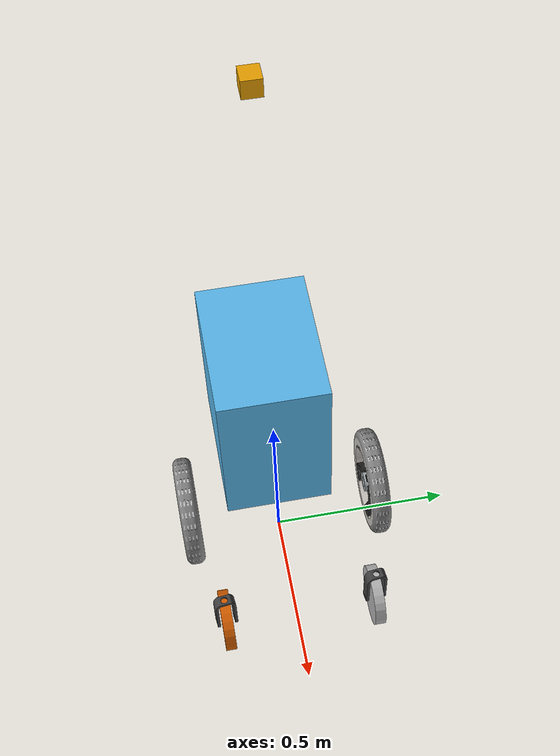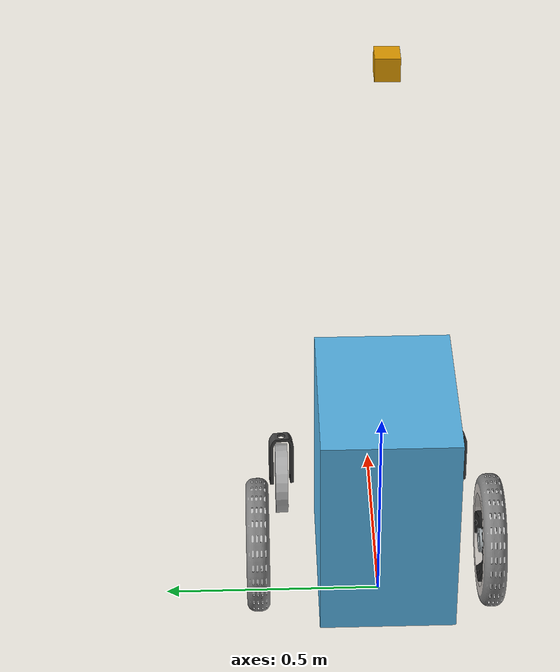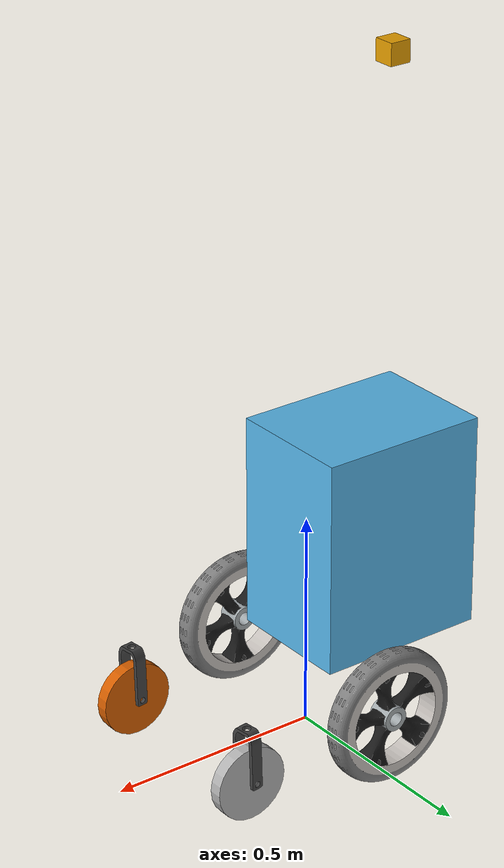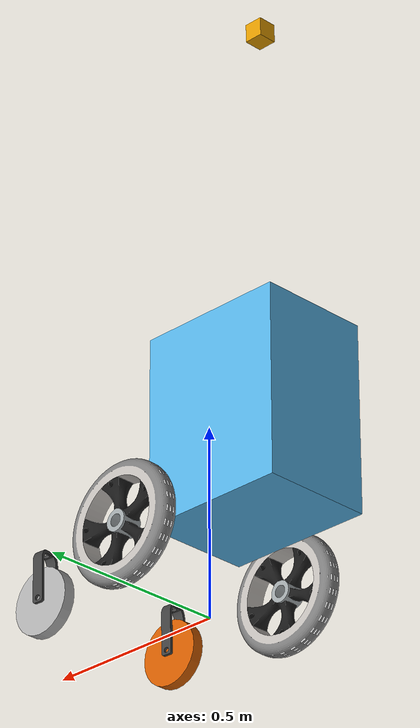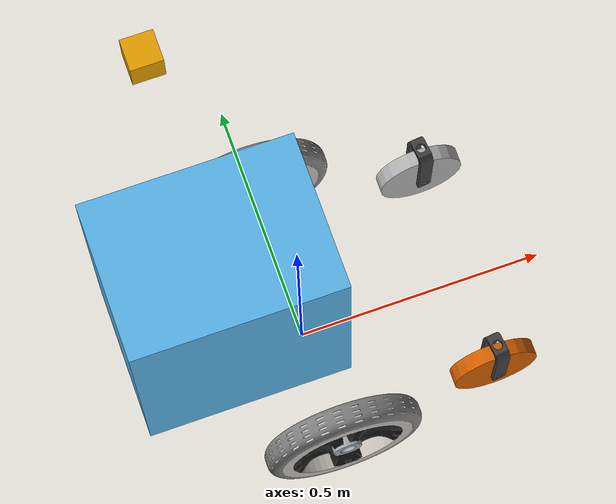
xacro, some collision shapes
<?xml version="1.0" encoding="utf-8"?>
<robot name="wheelchair" xmlns:xacro="http://ros.org/wiki/xacro">

  <material name="grey">
    <color rgba="0.5 0.5 0.5 1.0"/>
  </material>

  <xacro:macro name="box_inertia" params="m w h d">
    <inertial>
      <origin xyz="0 0 0" rpy="0 0 0"/>
      <mass value="${m}"/>
      <inertia ixx="${(m/12) * (h*h + d*d)}" ixy="0.0" ixz="0.0" iyy="${(m/12) * (w*w + d*d)}" iyz="0.0" izz="${(m/12) * (w*w + h*h)}"/>
    </inertial>
  </xacro:macro>

  <xacro:macro name="cylinder_inertia" params="m r h">
    <inertial>
      <origin xyz="0 0 0" rpy="0 0 0" />
      <mass value="${m}"/>
      <inertia ixx="${(m/12) * (3*r*r + h*h)}" ixy = "0" ixz = "0" iyy="${(m/12) * (3*r*r + h*h)}" iyz = "0" izz="${(m/2) * (r*r)}"/>
    </inertial>
  </xacro:macro>

  <link name="base_footprint"/>

  <joint name="base_joint" type="fixed">
    <parent link="base_footprint"/>
    <child link="wheel_chair_link"/>
    <origin xyz="0 0 0" rpy="0 0 0"/>
  </joint>

  <link name="wheel_chair_link">
    <visual>
      <origin xyz="-0.2 0 0" rpy="0 0 0"/>
      <geometry>
        <mesh filename="package://wheelchair2_gazebo_classic/meshes/wheel_chair.dae" scale="1 1 1"/>
      </geometry>
    </visual>
    <collision>
      <origin xyz="-0.15 0 0.45" rpy="0 0 0"/>
      <geometry>
        <box size="0.4 0.3 0.5"/>
      </geometry>
    </collision>
    <xacro:box_inertia m="25.0" w="0.7" h="1.0" d="0.8"/>
  </link>

  <link name="left_wheel_link">
    <visual>
      <origin xyz="0 0 0" rpy="0 0 0"/>
      <geometry><mesh filename="package://wheelchair2_gazebo_classic/meshes/left_wheel.dae"/></geometry>
    </visual>
    <collision>
      <origin xyz="0 0 0" rpy="1.5708 0 0"/>
      <geometry><cylinder radius="0.15" length="0.05"/></geometry>
    </collision>
    <xacro:cylinder_inertia m="2.0" r="0.15" h="0.05"/>
  </link>

  <joint name="left_wheel_link_joint" type="continuous">
    <origin rpy="0 0 0" xyz="-0.00432 -0.25998 0.14563"/>
    <parent link="wheel_chair_link"/>
    <child link="left_wheel_link"/>
    <axis xyz="0 1 0"/>
  </joint>

  <link name="right_wheel_link">
    <visual>
      <origin xyz="0 0 0" rpy="0 0 0"/>
      <geometry><mesh filename="package://wheelchair2_gazebo_classic/meshes/right_wheel.dae"/></geometry>
    </visual>
    <collision>
      <origin xyz="0 0 0" rpy="1.5708 0 0"/>
      <geometry><cylinder radius="0.15" length="0.05"/></geometry>
    </collision>
    <xacro:cylinder_inertia m="2.0" r="0.15" h="0.05"/>
  </link>

  <joint name="right_wheel_link_joint" type="continuous">
    <origin rpy="0 0 0" xyz="-0.00431 0.28301 0.14557"/>
    <parent link="wheel_chair_link"/>
    <child link="right_wheel_link"/>
    <axis xyz="0 1 0"/>
  </joint>

  <link name="casterwheel_holder_left_link">
    <visual>
      <origin xyz="0 0 -0.1" rpy="0 0 0"/>
      <geometry><mesh filename="package://wheelchair2_gazebo_classic/meshes/casterwheel_holder_left.dae"/></geometry>
    </visual>
    <collision>
      <origin xyz="0 0 -0.1" rpy="0 0 0"/>
      <geometry><box size="0.05 0.05 0.05"/></geometry>
    </collision>
    <xacro:box_inertia m="1.0" w="0.05" h="0.05" d="0.05"/>
  </link>

  <joint name="casterwheel_holder_left_link_joint" type="continuous">
    <origin rpy="0 0 0" xyz="0.3255 -0.2021 0.2312"/>
    <parent link="wheel_chair_link"/>
    <child link="casterwheel_holder_left_link"/>
    <axis xyz="0 0 1"/>
    <dynamics damping="0.01" friction="0.0"/>
  </joint>

  <link name="caster_wheel_left_link">
    <visual>
      <origin rpy="1.5708 0 0" xyz="0 0 0"/>
      <geometry><cylinder radius="0.085" length="0.03"/></geometry>
    </visual>
    <collision>
      <origin rpy="1.5708 0 0" xyz="0 0 0"/>
      <geometry><cylinder radius="0.085" length="0.03"/></geometry>
    </collision>
    <xacro:cylinder_inertia m="0.5" r="0.085" h="0.03"/>
  </link>

  <joint name="caster_wheel_left_link_joint" type="continuous">
    <origin rpy="0 0 0" xyz="0 0 -0.155"/>
    <parent link="casterwheel_holder_left_link"/>
    <child link="caster_wheel_left_link"/>
    <axis xyz="0 1 0"/>
  </joint>

  <link name="casterwheel_holder_right_link">
    <visual>
      <origin xyz="0 0 -0.1" rpy="0 0 0"/>
      <geometry><mesh filename="package://wheelchair2_gazebo_classic/meshes/casterwheel_holder_left.dae"/></geometry>
    </visual>
    <collision>
      <origin xyz="0 0 -0.1" rpy="0 0 0"/>
      <geometry><box size="0.05 0.05 0.05"/></geometry>
    </collision>
    <xacro:box_inertia m="1.0" w="0.05" h="0.05" d="0.05"/>
  </link>

  <joint name="casterwheel_holder_right_link_joint" type="continuous">
    <origin rpy="0 0 0" xyz="0.3255 0.2221 0.2312"/>
    <parent link="wheel_chair_link"/>
    <child link="casterwheel_holder_right_link"/>
    <axis xyz="0 0 1"/>
    <dynamics damping="0.01" friction="0.0"/>
  </joint>

  <link name="caster_wheel_right_link">
    <visual>
      <origin rpy="1.5708 0 0" xyz="0 0 0"/>
      <geometry><cylinder radius="0.085" length="0.03"/></geometry>
    </visual>
    <collision>
      <origin rpy="1.5708 0 0" xyz="0 0 0"/>
      <geometry><cylinder radius="0.085" length="0.03"/></geometry>
    </collision>
    <xacro:cylinder_inertia m="0.5" r="0.085" h="0.03"/>
  </link>

  <joint name="caster_wheel_right_link_joint" type="continuous">
    <origin rpy="0 0 0" xyz="0 0 -0.157"/>
    <parent link="casterwheel_holder_right_link"/>
    <child link="caster_wheel_right_link"/>
    <axis xyz="0 1 0"/>
  </joint>

  <link name="lidar_link">
    <visual>
      <origin xyz="0 0 0" rpy="0 0 0"/>
      <geometry><mesh filename="package://wheelchair2_gazebo_classic/meshes/lidar.dae"/></geometry>
    </visual>
    <collision>
      <geometry><box size="0.05 0.05 0.05"/></geometry>
    </collision>
    <xacro:box_inertia m="0.1" w="0.05" h="0.05" d="0.05"/>
  </link>

  <joint name="lidar_link_joint" type="fixed">
    <origin rpy="3.14159 0 0" xyz="-0.20249 0.01960 1.52496"/>
    <parent link="wheel_chair_link"/>
    <child link="lidar_link"/>
  </joint>

  <gazebo>
    <plugin name="diff_drive" filename="libgazebo_ros_diff_drive.so">
      <left_joint>left_wheel_link_joint</left_joint>
      <right_joint>right_wheel_link_joint</right_joint>
      <wheel_separation>0.54</wheel_separation>
      <wheel_diameter>0.3</wheel_diameter>
      <max_wheel_torque>50</max_wheel_torque>
      <publish_odom>true</publish_odom>
      <publish_odom_tf>true</publish_odom_tf>
      <publish_wheel_tf>true</publish_wheel_tf>
      <robot_base_frame>base_footprint</robot_base_frame>
    </plugin>
  </gazebo>

  <gazebo reference="lidar_link">
    <sensor name="wheelchair_3d_lidar" type="ray">
      <always_on>true</always_on>
      <visualize>false</visualize> <update_rate>10</update_rate>
      <ray>
        <scan>
          <horizontal>
            <samples>360</samples>
            <resolution>1.0</resolution>
            <min_angle>-3.14159</min_angle>
            <max_angle>3.14159</max_angle>
          </horizontal>
          <vertical>
            <samples>16</samples>
            <resolution>1.0</resolution>
            <min_angle>-0.2617</min_angle> <max_angle>0.2617</max_angle>  </vertical>
        </scan>
        <range>
          <min>0.3</min> <max>30.0</max>
          <resolution>0.01</resolution>
        </range>
        <noise>
          <type>gaussian</type>
          <mean>0.0</mean>
          <stddev>0.01</stddev>
        </noise>
      </ray>
      <plugin name="gazebo_ros_3d_lidar" filename="libgazebo_ros_ray_sensor.so">
        <ros>
          <namespace>/</namespace>
          <remapping>~/out:=/livox/lidar</remapping>
        </ros>
        <output_type>sensor_msgs/PointCloud2</output_type>
        <frame_name>lidar_link</frame_name>

      </plugin>
    </sensor>
  </gazebo>

  <gazebo>
    <plugin name="joint_state_publisher" filename="libgazebo_ros_joint_state_publisher.so">
      <joint_name>casterwheel_holder_left_link_joint</joint_name>
      <joint_name>caster_wheel_left_link_joint</joint_name>
      <joint_name>casterwheel_holder_right_link_joint</joint_name>
      <joint_name>caster_wheel_right_link_joint</joint_name>
      <update_rate>30</update_rate>
    </plugin>
  </gazebo>

  <gazebo reference="left_wheel_link"><mu1>1.5</mu1><mu2>1.5</mu2></gazebo>
  <gazebo reference="right_wheel_link"><mu1>1.5</mu1><mu2>1.5</mu2></gazebo>

  <gazebo reference="caster_wheel_left_link">
    <mu1>100.1</mu1>
    <mu2>100.1</mu2>
  </gazebo>

  <gazebo reference="caster_wheel_right_link">
    <mu1>100.1</mu1>
    <mu2>100.1</mu2>
  </gazebo>

</robot>
